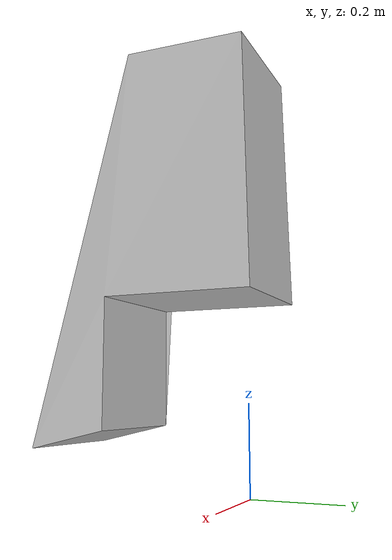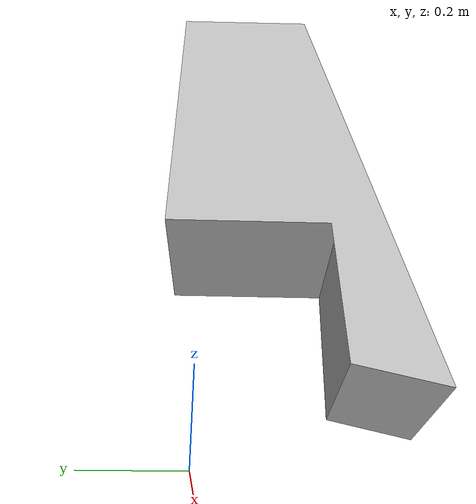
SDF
<?xml version='1.0' encoding='utf-8'?>
<sdf version="1.6">
  <model name="VisitorKidSit">
   <static>true</static>
    <link name="body">
      <pose>0 0 0 0 0 0</pose>

      <visual name="visual">
        <geometry>
          <mesh>
            <uri>model://VisitorKidSit/meshes/VisitorKidSit.obj</uri>
          </mesh>
        </geometry>
      </visual>

      <collision name="collision">
        <geometry>
          <mesh>
            <uri>model://VisitorKidSit/meshes/VisitorKidSit_Col.obj</uri>
          </mesh>
        </geometry>
      </collision>

    </link>
  </model>
</sdf>
